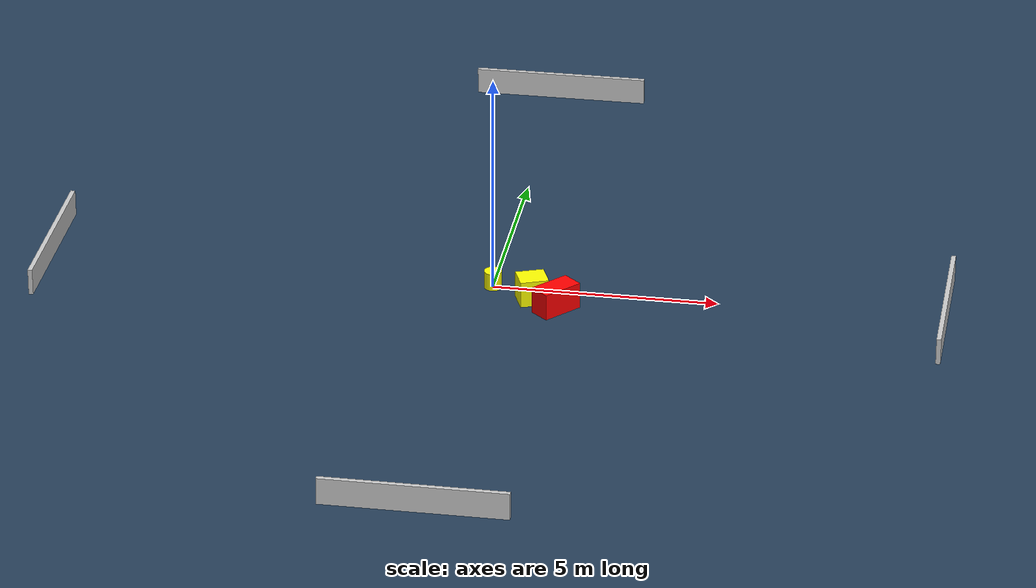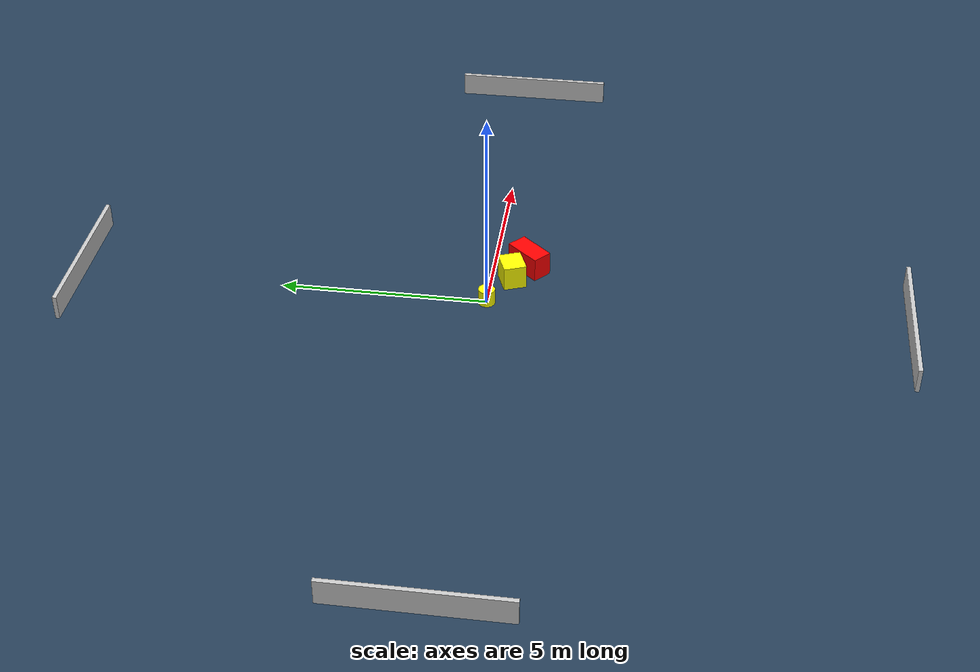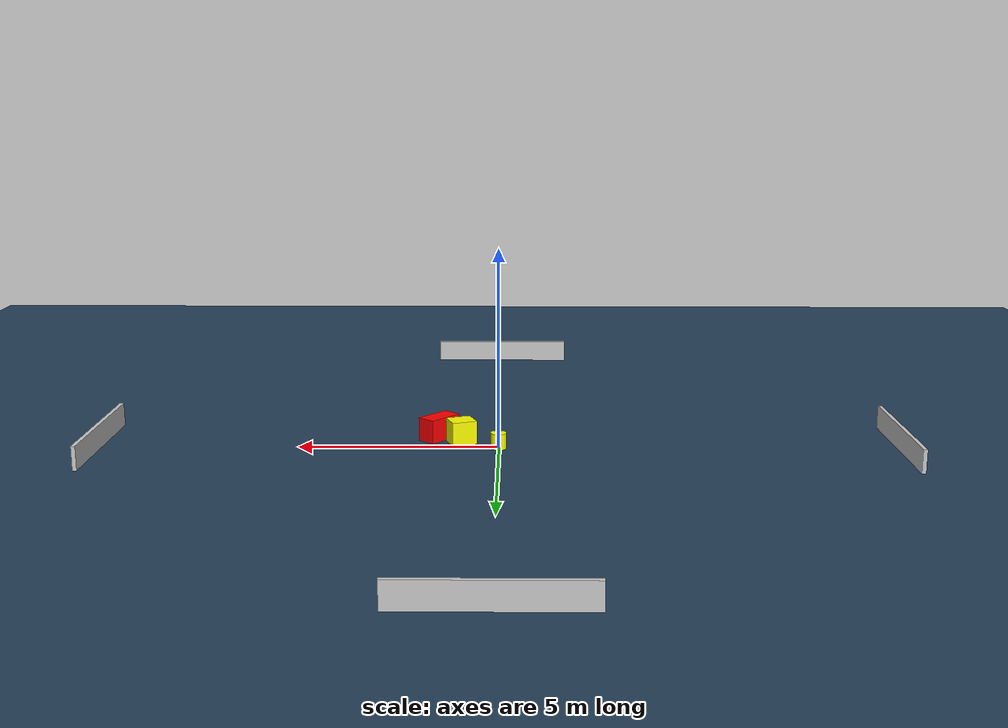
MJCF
<?xml version="1.0" ?>
<mujoco model="generated_environment">
  <option timestep="0.01" integrator="RK4" cone="elliptic"/>
  <default>
    <geom density="1"/>
  </default>
  <asset>
    <texture builtin="gradient" height="3072" name="skybox" rgb1="0.3 0.5 0.7" rgb2="0 0 0" type="skybox" width="512"/>
    <texture builtin="checker" height="300" name="groundplane" rgb1="0.2 0.3 0.4" rgb2="0.1 0.2 0.3" type="2d" width="300"/>
    <material name="groundplane" reflectance="0.2" texrepeat="5 5" texture="groundplane"/>
  </asset>
  <worldbody>
    <light dir="0 0 -1" directional="true" pos="0 0 1.5"/>
    <geom condim="3" friction="0.5 0.005 0.001" material="groundplane" name="floor" pos="0 0 0" size="0 0 0.05" type="plane"/>
    <body name="walls">
      <geom name="wall_1" condim="4" pos="-10.0 0.0 0.3" rgba="0.800000011920929 0.800000011920929 0.800000011920929 1.0" size="0.05 2.0 0.3" type="box"/>
      <geom name="wall_2" condim="4" pos="10.0 0.0 0.3" rgba="0.800000011920929 0.800000011920929 0.800000011920929 1.0" size="0.05 2.0 0.3" type="box"/>
      <geom name="wall_3" condim="4" pos="0.0 -10.0 0.3" rgba="0.800000011920929 0.800000011920929 0.800000011920929 1.0" size="2.0 0.05 0.3" type="box"/>
      <geom name="wall_4" condim="4" pos="0.0 10.0 0.3" rgba="0.800000011920929 0.800000011920929 0.800000011920929 1.0" size="2.0 0.05 0.3" type="box"/>
    </body>
    <body name="robot">
      <joint name="joint_x" type="slide" pos="0 0 0" axis="1 0 0"/>
      <joint name="joint_y" type="slide" pos="0 0 0" axis="0 1 0"/>
      <geom name="robot" type="cylinder" pos="0.0 0.0 0.2" size="0.2 0.2 0.0" mass="5.0" friction="1.0 0.005 0.0001" condim="4" rgba="1.0 1.0 0.0 1.0"/>
    </body>
    <body name="obstacle_1_movable">
      <geom name="obstacle_1_movable" condim="4" pos="0.9473534211115298 -0.49451050582415174 0.3" euler="0 0 291.0834792115549" friction="0.0 0.005 0.001" rgba="1.0 1.0 0.0 1.0" size="0.2804815529784112 0.31764671492646546 0.3" type="box" mass="0.1"/>
      <joint type="free"/>
    </body>
    <body name="obstacle_2_static">
      <geom name="obstacle_2_static" condim="4" pos="1.5300425941563516 -0.8494076350375804 0.3" euler="0 0 48.19392098408889" friction="0.0 0.005 0.001" rgba="1.0 0.0 0.0 1.0" size="0.47885885027591907 0.2486916340738901 0.3" type="box"/>
    </body>
  </worldbody>
  <actuator>
    <motor name="actuator_x" joint="joint_x" gear="1" ctrlrange="-1 1"/>
    <motor name="actuator_y" joint="joint_y" gear="1" ctrlrange="-1 1"/>
  </actuator>
</mujoco>
